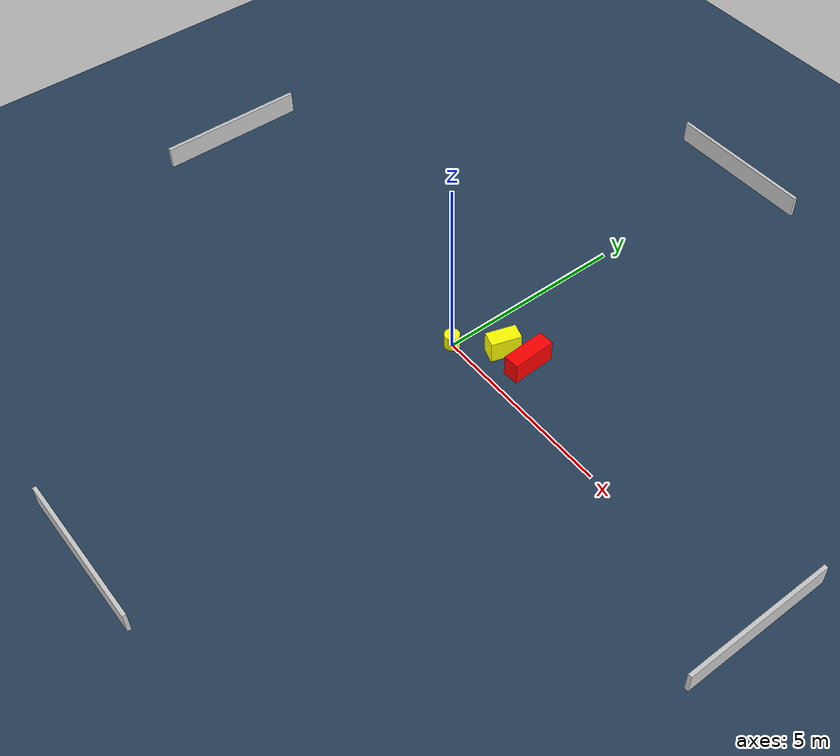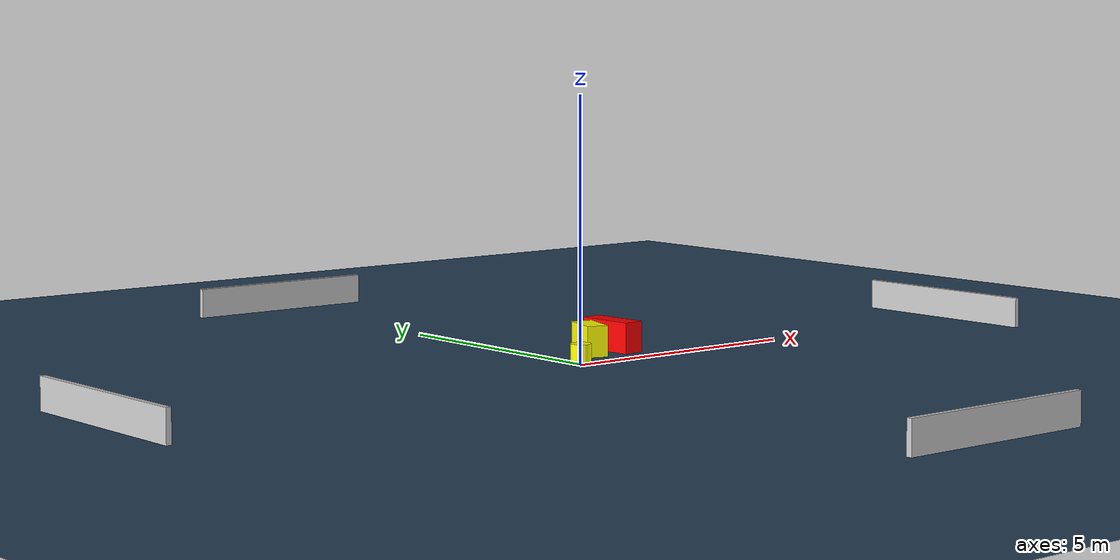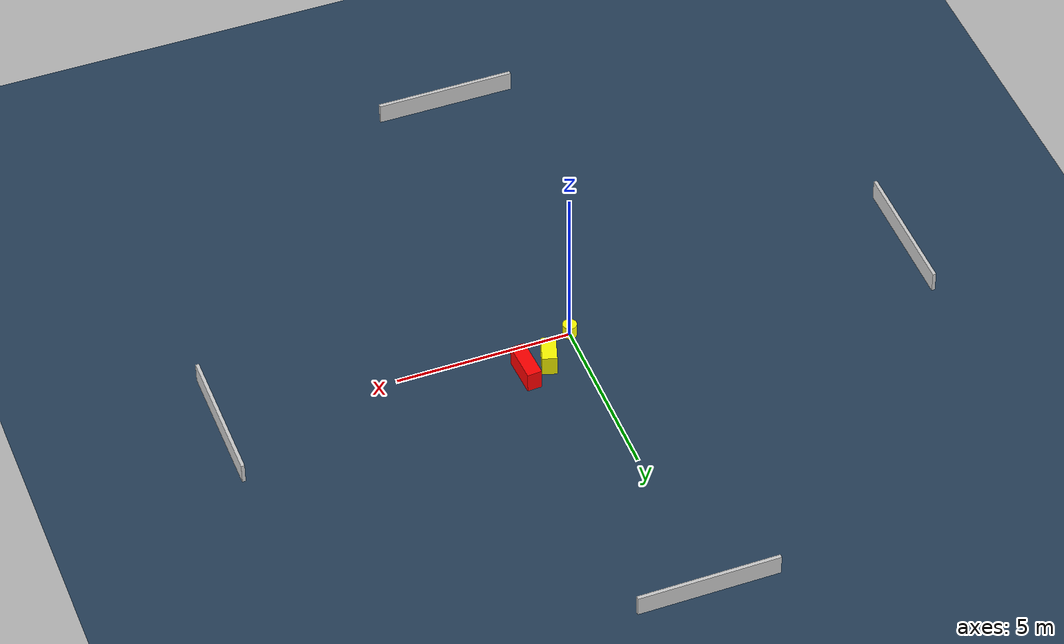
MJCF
<?xml version="1.0" ?>
<mujoco model="generated_environment">
  <option timestep="0.01" integrator="RK4" cone="elliptic"/>
  <default>
    <geom density="1"/>
  </default>
  <asset>
    <texture builtin="gradient" height="3072" name="skybox" rgb1="0.3 0.5 0.7" rgb2="0 0 0" type="skybox" width="512"/>
    <texture builtin="checker" height="300" name="groundplane" rgb1="0.2 0.3 0.4" rgb2="0.1 0.2 0.3" type="2d" width="300"/>
    <material name="groundplane" reflectance="0.2" texrepeat="5 5" texture="groundplane"/>
  </asset>
  <worldbody>
    <light dir="0 0 -1" directional="true" pos="0 0 1.5"/>
    <geom condim="3" friction="0.5 0.005 0.001" material="groundplane" name="floor" pos="0 0 0" size="0 0 0.05" type="plane"/>
    <body name="walls">
      <geom name="wall_1" condim="4" pos="-10.0 0.0 0.3" rgba="0.800000011920929 0.800000011920929 0.800000011920929 1.0" size="0.05 2.0 0.3" type="box"/>
      <geom name="wall_2" condim="4" pos="10.0 0.0 0.3" rgba="0.800000011920929 0.800000011920929 0.800000011920929 1.0" size="0.05 2.0 0.3" type="box"/>
      <geom name="wall_3" condim="4" pos="0.0 -10.0 0.3" rgba="0.800000011920929 0.800000011920929 0.800000011920929 1.0" size="2.0 0.05 0.3" type="box"/>
      <geom name="wall_4" condim="4" pos="0.0 10.0 0.3" rgba="0.800000011920929 0.800000011920929 0.800000011920929 1.0" size="2.0 0.05 0.3" type="box"/>
    </body>
    <body name="robot">
      <joint name="joint_x" type="slide" pos="0 0 0" axis="1 0 0"/>
      <joint name="joint_y" type="slide" pos="0 0 0" axis="0 1 0"/>
      <geom name="robot" type="cylinder" pos="0.0 0.0 0.2" size="0.2 0.2 0.0" mass="5.0" friction="1.0 0.005 0.0001" condim="4" rgba="1.0 1.0 0.0 1.0"/>
    </body>
    <body name="obstacle_1_movable">
      <geom name="obstacle_1_movable" condim="4" pos="0.9272186124423389 0.8411054834113038 0.3" euler="0 0 72.3056029525954" friction="0.0 0.005 0.001" rgba="1.0 1.0 0.0 1.0" size="0.39622165989999414 0.20935386186256918 0.3" type="box" mass="0.1"/>
      <joint type="free"/>
    </body>
    <body name="obstacle_2_static">
      <geom name="obstacle_2_static" condim="4" pos="1.6533077833672518 1.0129564235612876 0.3" euler="0 0 92.97669638542416" friction="0.0 0.005 0.001" rgba="1.0 0.0 0.0 1.0" size="0.5819811706043161 0.20987335683209274 0.3" type="box"/>
    </body>
  </worldbody>
  <actuator>
    <motor name="actuator_x" joint="joint_x" gear="1" ctrlrange="-1 1"/>
    <motor name="actuator_y" joint="joint_y" gear="1" ctrlrange="-1 1"/>
  </actuator>
</mujoco>
